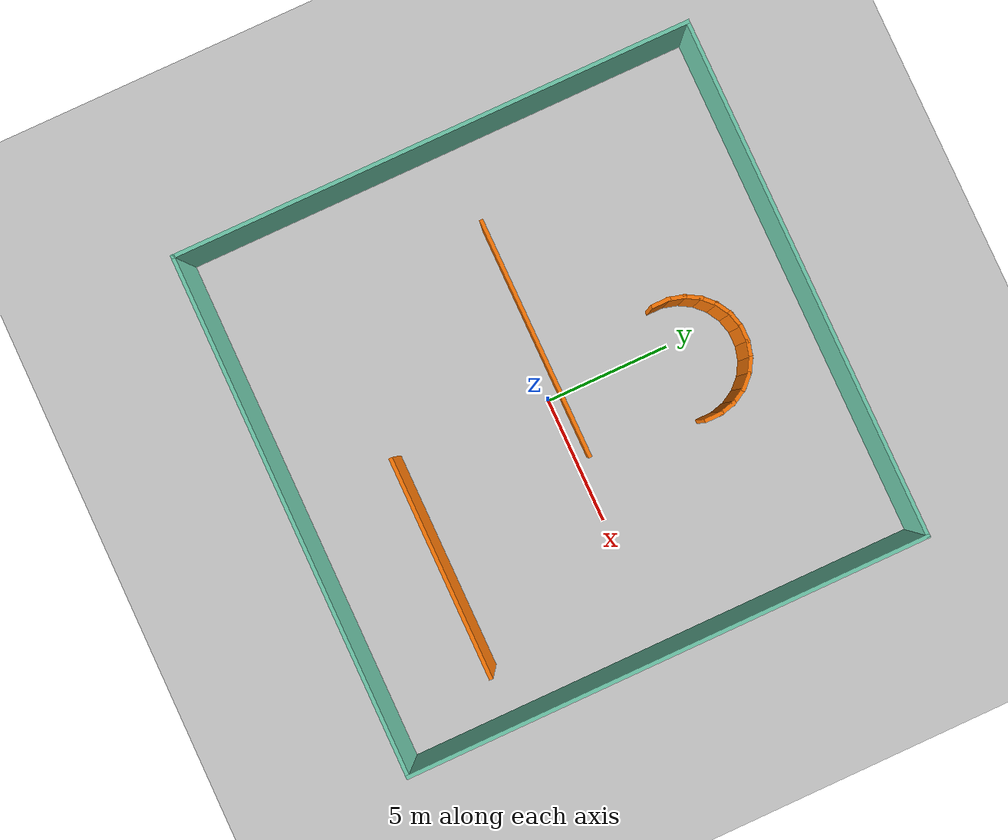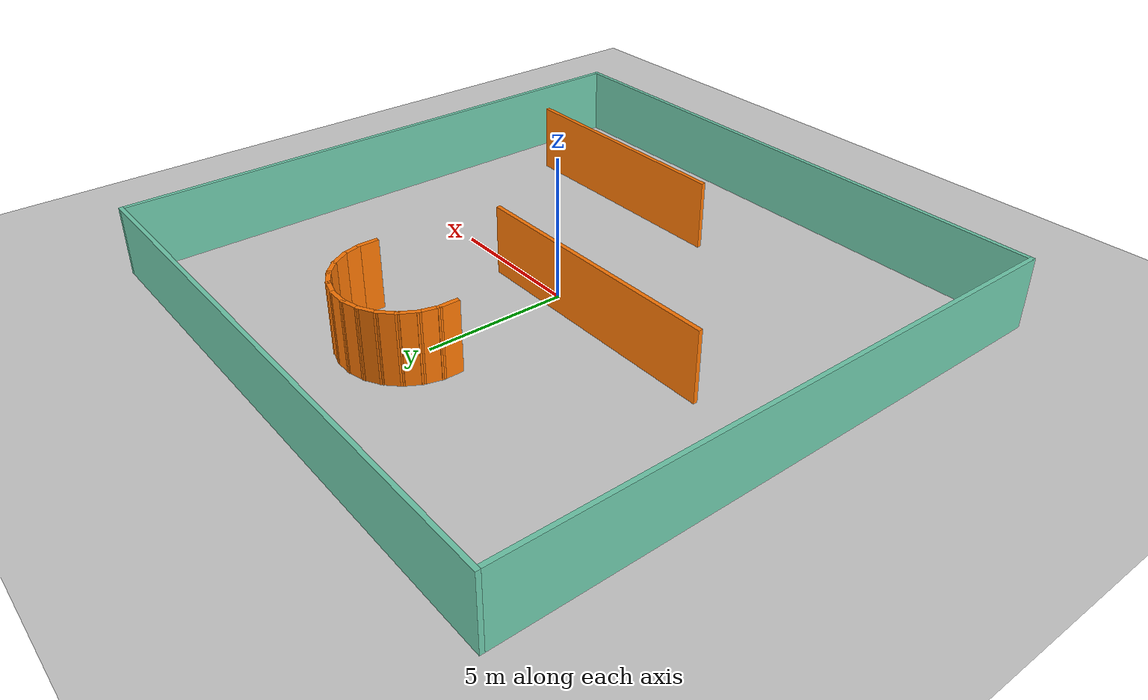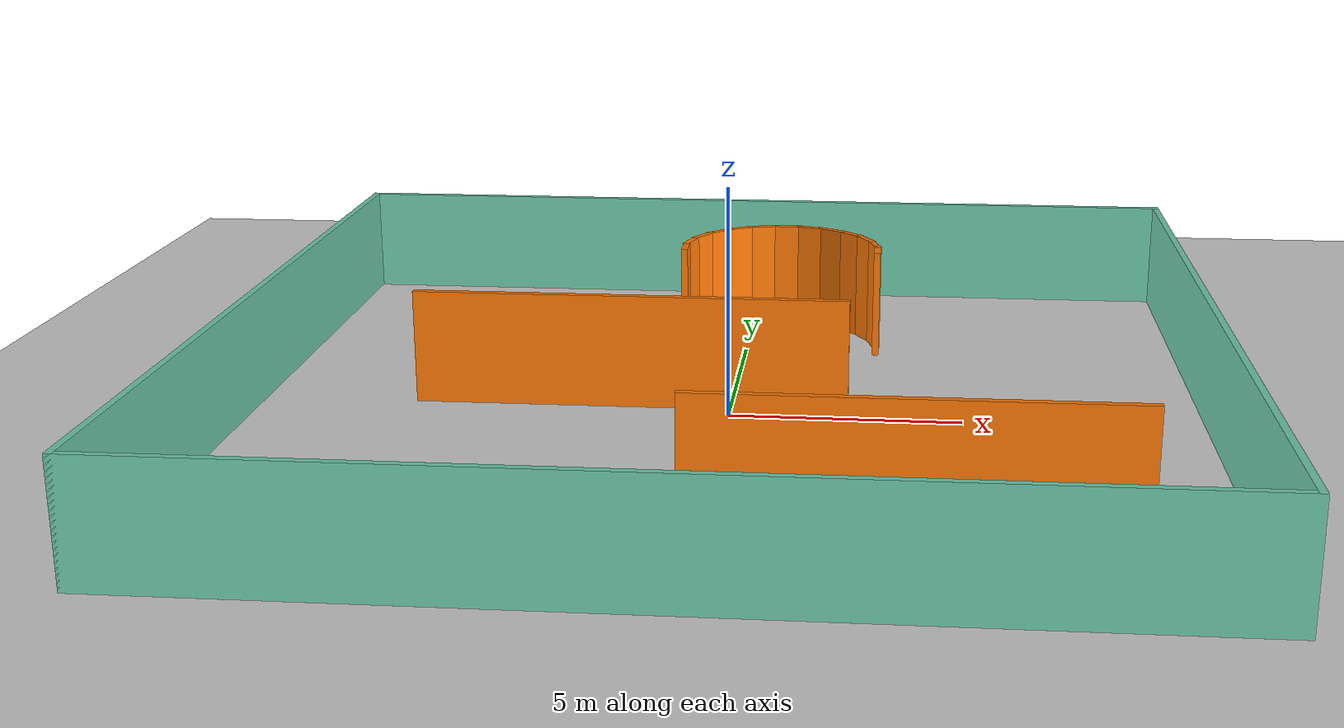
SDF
<?xml version="1.0" ?>
<sdf version="1.7">
  <world name="bug1_world">

    <!-- Luz do sol -->
    <include>
      <uri>model://sun</uri>
    </include>

    <!-- Incluindo o seu modelo -->
    <include>
      <uri>model://bug1_world</uri>
    </include>

    <include>
      <uri>model://ground_plane</uri>
    </include>

  </world>
</sdf>

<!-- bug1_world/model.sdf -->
<sdf version='1.7'>
  <model name='bug1_world'>
    <pose>-0.089 0.07 0 0 -0 0</pose>
    <link name='Wall_20'>
      <collision name='Wall_20_Collision'>
        <geometry>
          <box>
            <size>20.75 0.15 2.5</size>
          </box>
        </geometry>
        <pose>0 0 1.25 0 -0 0</pose>
      </collision>
      <visual name='Wall_20_Visual'>
        <pose>0 0 1.25 0 -0 0</pose>
        <geometry>
          <box>
            <size>20.75 0.15 2.5</size>
          </box>
        </geometry>
        <material>
          <script>
            <uri>file://media/materials/scripts/gazebo.material</uri>
            <name>Gazebo/Grey</name>
          </script>
          <ambient>0.435294 0.796078 0.67451 1</ambient>
        </material>
        <meta>
          <layer>0</layer>
        </meta>
      </visual>
      <pose>-0 -10.3 0 0 -0 0</pose>
    </link>
    <link name='Wall_21'>
      <collision name='Wall_21_Collision'>
        <geometry>
          <box>
            <size>20.75 0.15 2.5</size>
          </box>
        </geometry>
        <pose>0 0 1.25 0 -0 0</pose>
      </collision>
      <visual name='Wall_21_Visual'>
        <pose>0 0 1.25 0 -0 0</pose>
        <geometry>
          <box>
            <size>20.75 0.15 2.5</size>
          </box>
        </geometry>
        <material>
          <script>
            <uri>file://media/materials/scripts/gazebo.material</uri>
            <name>Gazebo/Grey</name>
          </script>
          <ambient>0.435294 0.796078 0.67451 1</ambient>
        </material>
        <meta>
          <layer>0</layer>
        </meta>
      </visual>
      <pose>10.3 0 0 0 -0 1.5708</pose>
    </link>
    <link name='Wall_22'>
      <collision name='Wall_22_Collision'>
        <geometry>
          <box>
            <size>20.75 0.15 2.5</size>
          </box>
        </geometry>
        <pose>0 0 1.25 0 -0 0</pose>
      </collision>
      <visual name='Wall_22_Visual'>
        <pose>0 0 1.25 0 -0 0</pose>
        <geometry>
          <box>
            <size>20.75 0.15 2.5</size>
          </box>
        </geometry>
        <material>
          <script>
            <uri>file://media/materials/scripts/gazebo.material</uri>
            <name>Gazebo/Grey</name>
          </script>
          <ambient>0.435294 0.796078 0.67451 1</ambient>
        </material>
        <meta>
          <layer>0</layer>
        </meta>
      </visual>
      <pose>-0 10.3 0 0 -0 3.14159</pose>
    </link>
    <link name='Wall_23'>
      <collision name='Wall_23_Collision'>
        <geometry>
          <box>
            <size>20.75 0.15 2.5</size>
          </box>
        </geometry>
        <pose>0 0 1.25 0 -0 0</pose>
      </collision>
      <visual name='Wall_23_Visual'>
        <pose>0 0 1.25 0 -0 0</pose>
        <geometry>
          <box>
            <size>20.75 0.15 2.5</size>
          </box>
        </geometry>
        <material>
          <script>
            <uri>file://media/materials/scripts/gazebo.material</uri>
            <name>Gazebo/Grey</name>
          </script>
          <ambient>0.435294 0.796078 0.67451 1</ambient>
        </material>
        <meta>
          <layer>0</layer>
        </meta>
      </visual>
      <pose>-10.3 0 0 0 -0 -1.5708</pose>
    </link>
    <link name='Wall_26'>
      <collision name='Wall_26_Collision'>
        <geometry>
          <box>
            <size>8.75 0.15 2.5</size>
          </box>
        </geometry>
        <pose>0 0 1.25 0 -0 0</pose>
      </collision>
      <visual name='Wall_26_Visual'>
        <pose>0 0 1.25 0 -0 0</pose>
        <geometry>
          <box>
            <size>8.75 0.15 2.5</size>
          </box>
        </geometry>
        <material>
          <script>
            <uri>file://media/materials/scripts/gazebo.material</uri>
            <name>Gazebo/Grey</name>
          </script>
          <ambient>0.996078 0.47451 0.0196078 1</ambient>
        </material>
        <meta>
          <layer>0</layer>
        </meta>
      </visual>
      <pose>4.013 -6.143 0 0 -0 0</pose>
    </link>
    <link name='Wall_32'>
      <collision name='Wall_32_Collision'>
        <geometry>
          <box>
            <size>9.5 0.15 2.5</size>
          </box>
        </geometry>
        <pose>0 0 1.25 0 -0 0</pose>
      </collision>
      <visual name='Wall_32_Visual'>
        <pose>0 0 1.25 0 -0 0</pose>
        <geometry>
          <box>
            <size>9.5 0.15 2.5</size>
          </box>
        </geometry>
        <material>
          <script>
            <uri>file://media/materials/scripts/gazebo.material</uri>
            <name>Gazebo/Grey</name>
          </script>
          <ambient>0.996078 0.47451 0.0196078 1</ambient>
        </material>
        <meta>
          <layer>0</layer>
        </meta>
      </visual>
      <pose>-2.103 0.427 0 0 -0 3.14159</pose>
    </link>
    <link name='Wall_83'>
      <collision name='Wall_83_Collision'>
        <geometry>
          <box>
            <size>0.75 0.15 2.5</size>
          </box>
        </geometry>
        <pose>0 0 1.25 0 -0 0</pose>
      </collision>
      <visual name='Wall_83_Visual'>
        <pose>0 0 1.25 0 -0 0</pose>
        <geometry>
          <box>
            <size>0.75 0.15 2.5</size>
          </box>
        </geometry>
        <material>
          <script>
            <uri>file://media/materials/scripts/gazebo.material</uri>
            <name>Gazebo/Grey</name>
          </script>
          <ambient>0.996078 0.47451 0.0196078 1</ambient>
        </material>
        <meta>
          <layer>0</layer>
        </meta>
      </visual>
      <pose>-1.385 5.099 0 0 -0 1.5708</pose>
    </link>
    <link name='Wall_84'>
      <collision name='Wall_84_Collision'>
        <geometry>
          <box>
            <size>0.75 0.15 2.5</size>
          </box>
        </geometry>
        <pose>0 0 1.25 0 -0 0</pose>
      </collision>
      <visual name='Wall_84_Visual'>
        <pose>0 0 1.25 0 -0 0</pose>
        <geometry>
          <box>
            <size>0.75 0.15 2.5</size>
          </box>
        </geometry>
        <material>
          <script>
            <uri>file://media/materials/scripts/gazebo.material</uri>
            <name>Gazebo/Grey</name>
          </script>
          <ambient>0.996078 0.47451 0.0196078 1</ambient>
        </material>
        <meta>
          <layer>0</layer>
        </meta>
      </visual>
      <pose>-1.307 5.6885 0 0 -0 1.30762</pose>
    </link>
    <link name='Wall_87'>
      <collision name='Wall_87_Collision'>
        <geometry>
          <box>
            <size>0.75 0.15 2.5</size>
          </box>
        </geometry>
        <pose>0 0 1.25 0 -0 0</pose>
      </collision>
      <visual name='Wall_87_Visual'>
        <pose>0 0 1.25 0 -0 0</pose>
        <geometry>
          <box>
            <size>0.75 0.15 2.5</size>
          </box>
        </geometry>
        <material>
          <script>
            <uri>file://media/materials/scripts/gazebo.material</uri>
            <name>Gazebo/Grey</name>
          </script>
          <ambient>0.996078 0.47451 0.0196078 1</ambient>
        </material>
        <meta>
          <layer>0</layer>
        </meta>
      </visual>
      <pose>-1.079 6.238 0 0 -0 1.04752</pose>
    </link>
    <link name='Wall_88'>
      <collision name='Wall_88_Collision'>
        <geometry>
          <box>
            <size>0.75 0.15 2.5</size>
          </box>
        </geometry>
        <pose>0 0 1.25 0 -0 0</pose>
      </collision>
      <visual name='Wall_88_Visual'>
        <pose>0 0 1.25 0 -0 0</pose>
        <geometry>
          <box>
            <size>0.75 0.15 2.5</size>
          </box>
        </geometry>
        <material>
          <script>
            <uri>file://media/materials/scripts/gazebo.material</uri>
            <name>Gazebo/Grey</name>
          </script>
          <ambient>0.996078 0.47451 0.0196078 1</ambient>
        </material>
        <meta>
          <layer>0</layer>
        </meta>
      </visual>
      <pose>-0.717 6.71 0 0 -0 0.785398</pose>
    </link>
    <link name='Wall_90'>
      <collision name='Wall_90_Collision'>
        <geometry>
          <box>
            <size>0.75 0.15 2.5</size>
          </box>
        </geometry>
        <pose>0 0 1.25 0 -0 0</pose>
      </collision>
      <visual name='Wall_90_Visual'>
        <pose>0 0 1.25 0 -0 0</pose>
        <geometry>
          <box>
            <size>0.75 0.15 2.5</size>
          </box>
        </geometry>
        <material>
          <script>
            <uri>file://media/materials/scripts/gazebo.material</uri>
            <name>Gazebo/Grey</name>
          </script>
          <ambient>0.996078 0.47451 0.0196078 1</ambient>
        </material>
        <meta>
          <layer>0</layer>
        </meta>
      </visual>
      <pose>-0.245 7.072 0 0 -0 0.523278</pose>
    </link>
    <link name='Wall_91'>
      <collision name='Wall_91_Collision'>
        <geometry>
          <box>
            <size>0.75 0.15 2.5</size>
          </box>
        </geometry>
        <pose>0 0 1.25 0 -0 0</pose>
      </collision>
      <visual name='Wall_91_Visual'>
        <pose>0 0 1.25 0 -0 0</pose>
        <geometry>
          <box>
            <size>0.75 0.15 2.5</size>
          </box>
        </geometry>
        <material>
          <script>
            <uri>file://media/materials/scripts/gazebo.material</uri>
            <name>Gazebo/Grey</name>
          </script>
          <ambient>0.996078 0.47451 0.0196078 1</ambient>
        </material>
        <meta>
          <layer>0</layer>
        </meta>
      </visual>
      <pose>0.3045 7.3 0 0 -0 0.263181</pose>
    </link>
    <link name='Wall_92'>
      <collision name='Wall_92_Collision'>
        <geometry>
          <box>
            <size>0.75 0.15 2.5</size>
          </box>
        </geometry>
        <pose>0 0 1.25 0 -0 0</pose>
      </collision>
      <visual name='Wall_92_Visual'>
        <pose>0 0 1.25 0 -0 0</pose>
        <geometry>
          <box>
            <size>0.75 0.15 2.5</size>
          </box>
        </geometry>
        <material>
          <script>
            <uri>file://media/materials/scripts/gazebo.material</uri>
            <name>Gazebo/Grey</name>
          </script>
          <ambient>0.996078 0.47451 0.0196078 1</ambient>
        </material>
        <meta>
          <layer>0</layer>
        </meta>
      </visual>
      <pose>0.894 7.378 0 0 -0 0</pose>
    </link>
    <link name='Wall_93'>
      <collision name='Wall_93_Collision'>
        <geometry>
          <box>
            <size>0.75 0.15 2.5</size>
          </box>
        </geometry>
        <pose>0 0 1.25 0 -0 0</pose>
      </collision>
      <visual name='Wall_93_Visual'>
        <pose>0 0 1.25 0 -0 0</pose>
        <geometry>
          <box>
            <size>0.75 0.15 2.5</size>
          </box>
        </geometry>
        <material>
          <script>
            <uri>file://media/materials/scripts/gazebo.material</uri>
            <name>Gazebo/Grey</name>
          </script>
          <ambient>0.996078 0.47451 0.0196078 1</ambient>
        </material>
        <meta>
          <layer>0</layer>
        </meta>
      </visual>
      <pose>1.484 7.3 0 0 -0 -0.262747</pose>
    </link>
    <link name='Wall_94'>
      <collision name='Wall_94_Collision'>
        <geometry>
          <box>
            <size>0.75 0.15 2.5</size>
          </box>
        </geometry>
        <pose>0 0 1.25 0 -0 0</pose>
      </collision>
      <visual name='Wall_94_Visual'>
        <pose>0 0 1.25 0 -0 0</pose>
        <geometry>
          <box>
            <size>0.75 0.15 2.5</size>
          </box>
        </geometry>
        <material>
          <script>
            <uri>file://media/materials/scripts/gazebo.material</uri>
            <name>Gazebo/Grey</name>
          </script>
          <ambient>0.996078 0.47451 0.0196078 1</ambient>
        </material>
        <meta>
          <layer>0</layer>
        </meta>
      </visual>
      <pose>2.0335 7.072 0 0 -0 -0.524112</pose>
    </link>
    <link name='Wall_95'>
      <collision name='Wall_95_Collision'>
        <geometry>
          <box>
            <size>0.75 0.15 2.5</size>
          </box>
        </geometry>
        <pose>0 0 1.25 0 -0 0</pose>
      </collision>
      <visual name='Wall_95_Visual'>
        <pose>0 0 1.25 0 -0 0</pose>
        <geometry>
          <box>
            <size>0.75 0.15 2.5</size>
          </box>
        </geometry>
        <material>
          <script>
            <uri>file://media/materials/scripts/gazebo.material</uri>
            <name>Gazebo/Grey</name>
          </script>
          <ambient>0.996078 0.47451 0.0196078 1</ambient>
        </material>
        <meta>
          <layer>0</layer>
        </meta>
      </visual>
      <pose>2.5055 6.71 0 0 -0 -0.78422</pose>
    </link>
    <link name='Wall_96'>
      <collision name='Wall_96_Collision'>
        <geometry>
          <box>
            <size>0.75 0.15 2.5</size>
          </box>
        </geometry>
        <pose>0 0 1.25 0 -0 0</pose>
      </collision>
      <visual name='Wall_96_Visual'>
        <pose>0 0 1.25 0 -0 0</pose>
        <geometry>
          <box>
            <size>0.75 0.15 2.5</size>
          </box>
        </geometry>
        <material>
          <script>
            <uri>file://media/materials/scripts/gazebo.material</uri>
            <name>Gazebo/Grey</name>
          </script>
          <ambient>0.996078 0.47451 0.0196078 1</ambient>
        </material>
        <meta>
          <layer>0</layer>
        </meta>
      </visual>
      <pose>2.868 6.238 0 0 -0 -1.04752</pose>
    </link>
    <link name='Wall_97'>
      <collision name='Wall_97_Collision'>
        <geometry>
          <box>
            <size>0.75 0.15 2.5</size>
          </box>
        </geometry>
        <pose>0 0 1.25 0 -0 0</pose>
      </collision>
      <visual name='Wall_97_Visual'>
        <pose>0 0 1.25 0 -0 0</pose>
        <geometry>
          <box>
            <size>0.75 0.15 2.5</size>
          </box>
        </geometry>
        <material>
          <script>
            <uri>file://media/materials/scripts/gazebo.material</uri>
            <name>Gazebo/Grey</name>
          </script>
          <ambient>0.996078 0.47451 0.0196078 1</ambient>
        </material>
        <meta>
          <layer>0</layer>
        </meta>
      </visual>
      <pose>3.0955 5.6885 0 0 -0 -1.30923</pose>
    </link>
    <link name='Wall_98'>
      <collision name='Wall_98_Collision'>
        <geometry>
          <box>
            <size>0.75 0.15 2.5</size>
          </box>
        </geometry>
        <pose>0 0 1.25 0 -0 0</pose>
      </collision>
      <visual name='Wall_98_Visual'>
        <pose>0 0 1.25 0 -0 0</pose>
        <geometry>
          <box>
            <size>0.75 0.15 2.5</size>
          </box>
        </geometry>
        <material>
          <script>
            <uri>file://media/materials/scripts/gazebo.material</uri>
            <name>Gazebo/Grey</name>
          </script>
          <ambient>0.996078 0.47451 0.0196078 1</ambient>
        </material>
        <meta>
          <layer>0</layer>
        </meta>
      </visual>
      <pose>3.173 5.099 0 0 -0 -1.5708</pose>
    </link>
    <static>1</static>
  </model>
</sdf>
